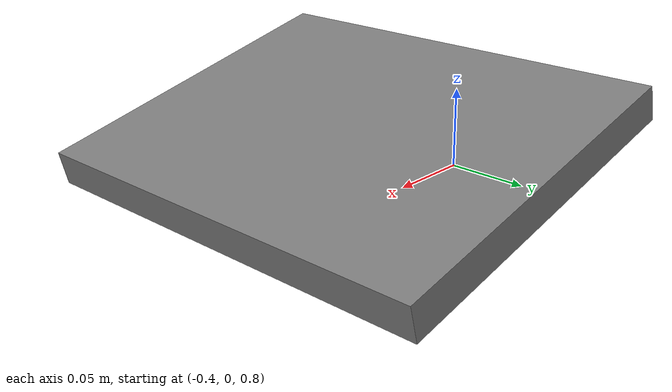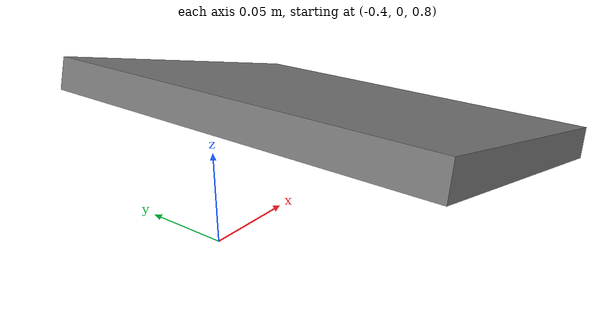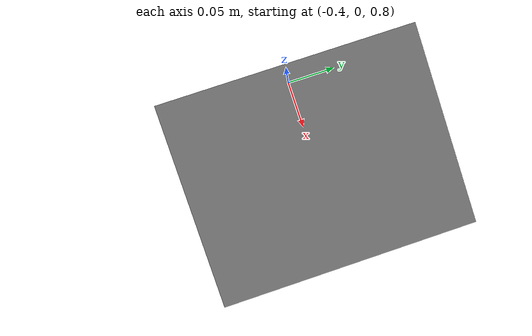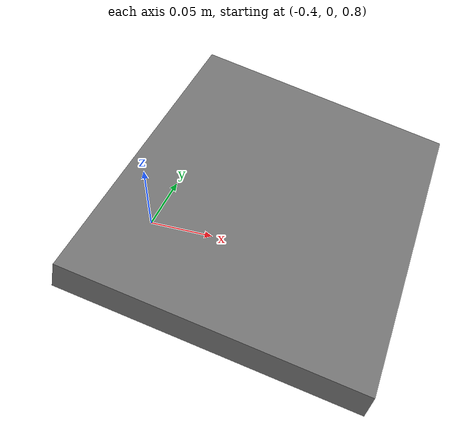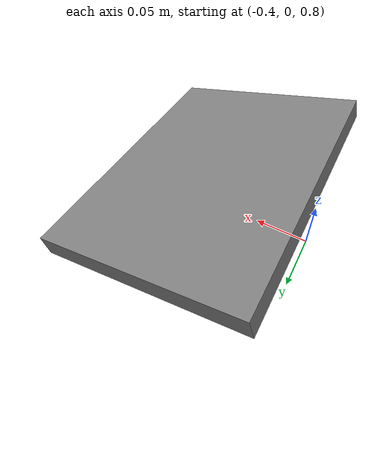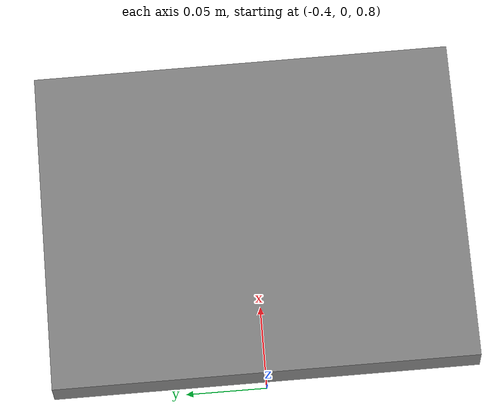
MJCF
<mujoco model="milk">
  <asset>
    <mesh file="meshes/milk.msh" name="milk_mesh" scale="0.9 0.9 0.9"/>
    <texture file="../textures/ceramic.png" name="tex-ceramic" type="2d"/>
    <material name="ceramic" reflectance="0.5" texrepeat="1 1" texture="tex-ceramic" texuniform="true"/>
  </asset>
  <worldbody>
    <body>
      <body name="object">
        <geom pos="-0.3 0 0.845" quat="0.993 0. 0.122 0." size="0.1 0.1275 0.01" type="box" solimp="0.998 0.998 0.001" solref="-10000 -5" density="100" friction="0.95 0.3 0.1" group="0" condim="6" rgba="0.5 0.5 0.5 1" />

      </body>
      <site rgba="0 0 0 0" size="0.005" pos="0 0 -0.085" name="bottom_site"/>
      <site rgba="0 0 0 0" size="0.005" pos="0 0 0.075" name="top_site"/>
      <site rgba="0 0 0 0" size="0.005" pos="0.025 0.025 0" name="horizontal_radius_site"/>
    </body>
  </worldbody>
</mujoco>
